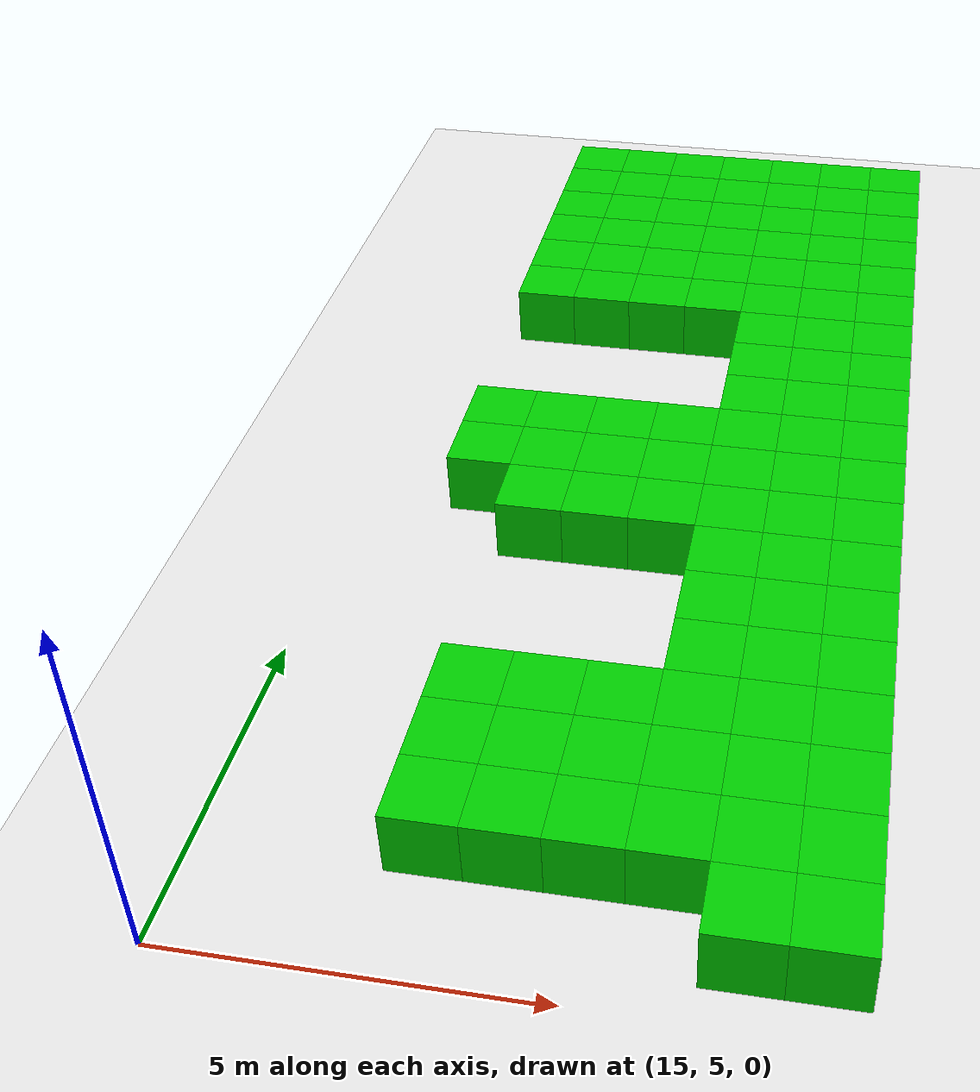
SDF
<sdf version="1.6">
 <world name="generated_maze">
  <model name="ground_plane">
   <static>true</static>
   <link name="link">
    <collision name="collision">
     <geometry><plane><normal>0 0 1</normal><size>100 100</size></plane></geometry>
    </collision>
    <visual name="visual">
     <geometry><plane><normal>0 0 1</normal><size>100 100</size></plane></geometry>
     <material>
      <ambient>0.9 0.9 0.9 1</ambient>
      <diffuse>0.9 0.9 0.9 1</diffuse>
      <specular>0.3 0.3 0.3 1</specular>
     </material>
    </visual>
   </link>
  </model>
  <model name="wall_0_41">
   <static>true</static>
   <pose>17 24 0.5 0 0 0</pose>
   <link name="link">
    <collision name="collision"><geometry><box><size>1 1 1</size></box></geometry></collision>
    <visual name="visual">
     <geometry><box><size>1 1 1</size></box></geometry>
     <material>
      <ambient>0.0 0.8 0.0 1</ambient>
      <diffuse>0.0 0.8 0.0 1</diffuse>
      <specular>0.1 0.1 0.1 1</specular>
     </material>
    </visual>
   </link>
  </model>
  <model name="wall_0_42">
   <static>true</static>
   <pose>18 24 0.5 0 0 0</pose>
   <link name="link">
    <collision name="collision"><geometry><box><size>1 1 1</size></box></geometry></collision>
    <visual name="visual">
     <geometry><box><size>1 1 1</size></box></geometry>
     <material>
      <ambient>0.0 0.8 0.0 1</ambient>
      <diffuse>0.0 0.8 0.0 1</diffuse>
      <specular>0.1 0.1 0.1 1</specular>
     </material>
    </visual>
   </link>
  </model>
  <model name="wall_0_43">
   <static>true</static>
   <pose>19 24 0.5 0 0 0</pose>
   <link name="link">
    <collision name="collision"><geometry><box><size>1 1 1</size></box></geometry></collision>
    <visual name="visual">
     <geometry><box><size>1 1 1</size></box></geometry>
     <material>
      <ambient>0.0 0.8 0.0 1</ambient>
      <diffuse>0.0 0.8 0.0 1</diffuse>
      <specular>0.1 0.1 0.1 1</specular>
     </material>
    </visual>
   </link>
  </model>
  <model name="wall_0_44">
   <static>true</static>
   <pose>20 24 0.5 0 0 0</pose>
   <link name="link">
    <collision name="collision"><geometry><box><size>1 1 1</size></box></geometry></collision>
    <visual name="visual">
     <geometry><box><size>1 1 1</size></box></geometry>
     <material>
      <ambient>0.0 0.8 0.0 1</ambient>
      <diffuse>0.0 0.8 0.0 1</diffuse>
      <specular>0.1 0.1 0.1 1</specular>
     </material>
    </visual>
   </link>
  </model>
  <model name="wall_0_45">
   <static>true</static>
   <pose>21 24 0.5 0 0 0</pose>
   <link name="link">
    <collision name="collision"><geometry><box><size>1 1 1</size></box></geometry></collision>
    <visual name="visual">
     <geometry><box><size>1 1 1</size></box></geometry>
     <material>
      <ambient>0.0 0.8 0.0 1</ambient>
      <diffuse>0.0 0.8 0.0 1</diffuse>
      <specular>0.1 0.1 0.1 1</specular>
     </material>
    </visual>
   </link>
  </model>
  <model name="wall_0_46">
   <static>true</static>
   <pose>22 24 0.5 0 0 0</pose>
   <link name="link">
    <collision name="collision"><geometry><box><size>1 1 1</size></box></geometry></collision>
    <visual name="visual">
     <geometry><box><size>1 1 1</size></box></geometry>
     <material>
      <ambient>0.0 0.8 0.0 1</ambient>
      <diffuse>0.0 0.8 0.0 1</diffuse>
      <specular>0.1 0.1 0.1 1</specular>
     </material>
    </visual>
   </link>
  </model>
  <model name="wall_0_47">
   <static>true</static>
   <pose>23 24 0.5 0 0 0</pose>
   <link name="link">
    <collision name="collision"><geometry><box><size>1 1 1</size></box></geometry></collision>
    <visual name="visual">
     <geometry><box><size>1 1 1</size></box></geometry>
     <material>
      <ambient>0.0 0.8 0.0 1</ambient>
      <diffuse>0.0 0.8 0.0 1</diffuse>
      <specular>0.1 0.1 0.1 1</specular>
     </material>
    </visual>
   </link>
  </model>
  <model name="wall_1_41">
   <static>true</static>
   <pose>17 23 0.5 0 0 0</pose>
   <link name="link">
    <collision name="collision"><geometry><box><size>1 1 1</size></box></geometry></collision>
    <visual name="visual">
     <geometry><box><size>1 1 1</size></box></geometry>
     <material>
      <ambient>0.0 0.8 0.0 1</ambient>
      <diffuse>0.0 0.8 0.0 1</diffuse>
      <specular>0.1 0.1 0.1 1</specular>
     </material>
    </visual>
   </link>
  </model>
  <model name="wall_1_42">
   <static>true</static>
   <pose>18 23 0.5 0 0 0</pose>
   <link name="link">
    <collision name="collision"><geometry><box><size>1 1 1</size></box></geometry></collision>
    <visual name="visual">
     <geometry><box><size>1 1 1</size></box></geometry>
     <material>
      <ambient>0.0 0.8 0.0 1</ambient>
      <diffuse>0.0 0.8 0.0 1</diffuse>
      <specular>0.1 0.1 0.1 1</specular>
     </material>
    </visual>
   </link>
  </model>
  <model name="wall_1_43">
   <static>true</static>
   <pose>19 23 0.5 0 0 0</pose>
   <link name="link">
    <collision name="collision"><geometry><box><size>1 1 1</size></box></geometry></collision>
    <visual name="visual">
     <geometry><box><size>1 1 1</size></box></geometry>
     <material>
      <ambient>0.0 0.8 0.0 1</ambient>
      <diffuse>0.0 0.8 0.0 1</diffuse>
      <specular>0.1 0.1 0.1 1</specular>
     </material>
    </visual>
   </link>
  </model>
  <model name="wall_1_44">
   <static>true</static>
   <pose>20 23 0.5 0 0 0</pose>
   <link name="link">
    <collision name="collision"><geometry><box><size>1 1 1</size></box></geometry></collision>
    <visual name="visual">
     <geometry><box><size>1 1 1</size></box></geometry>
     <material>
      <ambient>0.0 0.8 0.0 1</ambient>
      <diffuse>0.0 0.8 0.0 1</diffuse>
      <specular>0.1 0.1 0.1 1</specular>
     </material>
    </visual>
   </link>
  </model>
  <model name="wall_1_45">
   <static>true</static>
   <pose>21 23 0.5 0 0 0</pose>
   <link name="link">
    <collision name="collision"><geometry><box><size>1 1 1</size></box></geometry></collision>
    <visual name="visual">
     <geometry><box><size>1 1 1</size></box></geometry>
     <material>
      <ambient>0.0 0.8 0.0 1</ambient>
      <diffuse>0.0 0.8 0.0 1</diffuse>
      <specular>0.1 0.1 0.1 1</specular>
     </material>
    </visual>
   </link>
  </model>
  <model name="wall_1_46">
   <static>true</static>
   <pose>22 23 0.5 0 0 0</pose>
   <link name="link">
    <collision name="collision"><geometry><box><size>1 1 1</size></box></geometry></collision>
    <visual name="visual">
     <geometry><box><size>1 1 1</size></box></geometry>
     <material>
      <ambient>0.0 0.8 0.0 1</ambient>
      <diffuse>0.0 0.8 0.0 1</diffuse>
      <specular>0.1 0.1 0.1 1</specular>
     </material>
    </visual>
   </link>
  </model>
  <model name="wall_1_47">
   <static>true</static>
   <pose>23 23 0.5 0 0 0</pose>
   <link name="link">
    <collision name="collision"><geometry><box><size>1 1 1</size></box></geometry></collision>
    <visual name="visual">
     <geometry><box><size>1 1 1</size></box></geometry>
     <material>
      <ambient>0.0 0.8 0.0 1</ambient>
      <diffuse>0.0 0.8 0.0 1</diffuse>
      <specular>0.1 0.1 0.1 1</specular>
     </material>
    </visual>
   </link>
  </model>
  <model name="wall_2_41">
   <static>true</static>
   <pose>17 22 0.5 0 0 0</pose>
   <link name="link">
    <collision name="collision"><geometry><box><size>1 1 1</size></box></geometry></collision>
    <visual name="visual">
     <geometry><box><size>1 1 1</size></box></geometry>
     <material>
      <ambient>0.0 0.8 0.0 1</ambient>
      <diffuse>0.0 0.8 0.0 1</diffuse>
      <specular>0.1 0.1 0.1 1</specular>
     </material>
    </visual>
   </link>
  </model>
  <model name="wall_2_42">
   <static>true</static>
   <pose>18 22 0.5 0 0 0</pose>
   <link name="link">
    <collision name="collision"><geometry><box><size>1 1 1</size></box></geometry></collision>
    <visual name="visual">
     <geometry><box><size>1 1 1</size></box></geometry>
     <material>
      <ambient>0.0 0.8 0.0 1</ambient>
      <diffuse>0.0 0.8 0.0 1</diffuse>
      <specular>0.1 0.1 0.1 1</specular>
     </material>
    </visual>
   </link>
  </model>
  <model name="wall_2_43">
   <static>true</static>
   <pose>19 22 0.5 0 0 0</pose>
   <link name="link">
    <collision name="collision"><geometry><box><size>1 1 1</size></box></geometry></collision>
    <visual name="visual">
     <geometry><box><size>1 1 1</size></box></geometry>
     <material>
      <ambient>0.0 0.8 0.0 1</ambient>
      <diffuse>0.0 0.8 0.0 1</diffuse>
      <specular>0.1 0.1 0.1 1</specular>
     </material>
    </visual>
   </link>
  </model>
  <model name="wall_2_44">
   <static>true</static>
   <pose>20 22 0.5 0 0 0</pose>
   <link name="link">
    <collision name="collision"><geometry><box><size>1 1 1</size></box></geometry></collision>
    <visual name="visual">
     <geometry><box><size>1 1 1</size></box></geometry>
     <material>
      <ambient>0.0 0.8 0.0 1</ambient>
      <diffuse>0.0 0.8 0.0 1</diffuse>
      <specular>0.1 0.1 0.1 1</specular>
     </material>
    </visual>
   </link>
  </model>
  <model name="wall_2_45">
   <static>true</static>
   <pose>21 22 0.5 0 0 0</pose>
   <link name="link">
    <collision name="collision"><geometry><box><size>1 1 1</size></box></geometry></collision>
    <visual name="visual">
     <geometry><box><size>1 1 1</size></box></geometry>
     <material>
      <ambient>0.0 0.8 0.0 1</ambient>
      <diffuse>0.0 0.8 0.0 1</diffuse>
      <specular>0.1 0.1 0.1 1</specular>
     </material>
    </visual>
   </link>
  </model>
  <model name="wall_2_46">
   <static>true</static>
   <pose>22 22 0.5 0 0 0</pose>
   <link name="link">
    <collision name="collision"><geometry><box><size>1 1 1</size></box></geometry></collision>
    <visual name="visual">
     <geometry><box><size>1 1 1</size></box></geometry>
     <material>
      <ambient>0.0 0.8 0.0 1</ambient>
      <diffuse>0.0 0.8 0.0 1</diffuse>
      <specular>0.1 0.1 0.1 1</specular>
     </material>
    </visual>
   </link>
  </model>
  <model name="wall_2_47">
   <static>true</static>
   <pose>23 22 0.5 0 0 0</pose>
   <link name="link">
    <collision name="collision"><geometry><box><size>1 1 1</size></box></geometry></collision>
    <visual name="visual">
     <geometry><box><size>1 1 1</size></box></geometry>
     <material>
      <ambient>0.0 0.8 0.0 1</ambient>
      <diffuse>0.0 0.8 0.0 1</diffuse>
      <specular>0.1 0.1 0.1 1</specular>
     </material>
    </visual>
   </link>
  </model>
  <model name="wall_3_41">
   <static>true</static>
   <pose>17 21 0.5 0 0 0</pose>
   <link name="link">
    <collision name="collision"><geometry><box><size>1 1 1</size></box></geometry></collision>
    <visual name="visual">
     <geometry><box><size>1 1 1</size></box></geometry>
     <material>
      <ambient>0.0 0.8 0.0 1</ambient>
      <diffuse>0.0 0.8 0.0 1</diffuse>
      <specular>0.1 0.1 0.1 1</specular>
     </material>
    </visual>
   </link>
  </model>
  <model name="wall_3_42">
   <static>true</static>
   <pose>18 21 0.5 0 0 0</pose>
   <link name="link">
    <collision name="collision"><geometry><box><size>1 1 1</size></box></geometry></collision>
    <visual name="visual">
     <geometry><box><size>1 1 1</size></box></geometry>
     <material>
      <ambient>0.0 0.8 0.0 1</ambient>
      <diffuse>0.0 0.8 0.0 1</diffuse>
      <specular>0.1 0.1 0.1 1</specular>
     </material>
    </visual>
   </link>
  </model>
  <model name="wall_3_43">
   <static>true</static>
   <pose>19 21 0.5 0 0 0</pose>
   <link name="link">
    <collision name="collision"><geometry><box><size>1 1 1</size></box></geometry></collision>
    <visual name="visual">
     <geometry><box><size>1 1 1</size></box></geometry>
     <material>
      <ambient>0.0 0.8 0.0 1</ambient>
      <diffuse>0.0 0.8 0.0 1</diffuse>
      <specular>0.1 0.1 0.1 1</specular>
     </material>
    </visual>
   </link>
  </model>
  <model name="wall_3_44">
   <static>true</static>
   <pose>20 21 0.5 0 0 0</pose>
   <link name="link">
    <collision name="collision"><geometry><box><size>1 1 1</size></box></geometry></collision>
    <visual name="visual">
     <geometry><box><size>1 1 1</size></box></geometry>
     <material>
      <ambient>0.0 0.8 0.0 1</ambient>
      <diffuse>0.0 0.8 0.0 1</diffuse>
      <specular>0.1 0.1 0.1 1</specular>
     </material>
    </visual>
   </link>
  </model>
  <model name="wall_3_45">
   <static>true</static>
   <pose>21 21 0.5 0 0 0</pose>
   <link name="link">
    <collision name="collision"><geometry><box><size>1 1 1</size></box></geometry></collision>
    <visual name="visual">
     <geometry><box><size>1 1 1</size></box></geometry>
     <material>
      <ambient>0.0 0.8 0.0 1</ambient>
      <diffuse>0.0 0.8 0.0 1</diffuse>
      <specular>0.1 0.1 0.1 1</specular>
     </material>
    </visual>
   </link>
  </model>
  <model name="wall_3_46">
   <static>true</static>
   <pose>22 21 0.5 0 0 0</pose>
   <link name="link">
    <collision name="collision"><geometry><box><size>1 1 1</size></box></geometry></collision>
    <visual name="visual">
     <geometry><box><size>1 1 1</size></box></geometry>
     <material>
      <ambient>0.0 0.8 0.0 1</ambient>
      <diffuse>0.0 0.8 0.0 1</diffuse>
      <specular>0.1 0.1 0.1 1</specular>
     </material>
    </visual>
   </link>
  </model>
  <model name="wall_3_47">
   <static>true</static>
   <pose>23 21 0.5 0 0 0</pose>
   <link name="link">
    <collision name="collision"><geometry><box><size>1 1 1</size></box></geometry></collision>
    <visual name="visual">
     <geometry><box><size>1 1 1</size></box></geometry>
     <material>
      <ambient>0.0 0.8 0.0 1</ambient>
      <diffuse>0.0 0.8 0.0 1</diffuse>
      <specular>0.1 0.1 0.1 1</specular>
     </material>
    </visual>
   </link>
  </model>
  <model name="wall_4_41">
   <static>true</static>
   <pose>17 20 0.5 0 0 0</pose>
   <link name="link">
    <collision name="collision"><geometry><box><size>1 1 1</size></box></geometry></collision>
    <visual name="visual">
     <geometry><box><size>1 1 1</size></box></geometry>
     <material>
      <ambient>0.0 0.8 0.0 1</ambient>
      <diffuse>0.0 0.8 0.0 1</diffuse>
      <specular>0.1 0.1 0.1 1</specular>
     </material>
    </visual>
   </link>
  </model>
  <model name="wall_4_42">
   <static>true</static>
   <pose>18 20 0.5 0 0 0</pose>
   <link name="link">
    <collision name="collision"><geometry><box><size>1 1 1</size></box></geometry></collision>
    <visual name="visual">
     <geometry><box><size>1 1 1</size></box></geometry>
     <material>
      <ambient>0.0 0.8 0.0 1</ambient>
      <diffuse>0.0 0.8 0.0 1</diffuse>
      <specular>0.1 0.1 0.1 1</specular>
     </material>
    </visual>
   </link>
  </model>
  <model name="wall_4_43">
   <static>true</static>
   <pose>19 20 0.5 0 0 0</pose>
   <link name="link">
    <collision name="collision"><geometry><box><size>1 1 1</size></box></geometry></collision>
    <visual name="visual">
     <geometry><box><size>1 1 1</size></box></geometry>
     <material>
      <ambient>0.0 0.8 0.0 1</ambient>
      <diffuse>0.0 0.8 0.0 1</diffuse>
      <specular>0.1 0.1 0.1 1</specular>
     </material>
    </visual>
   </link>
  </model>
  <model name="wall_4_44">
   <static>true</static>
   <pose>20 20 0.5 0 0 0</pose>
   <link name="link">
    <collision name="collision"><geometry><box><size>1 1 1</size></box></geometry></collision>
    <visual name="visual">
     <geometry><box><size>1 1 1</size></box></geometry>
     <material>
      <ambient>0.0 0.8 0.0 1</ambient>
      <diffuse>0.0 0.8 0.0 1</diffuse>
      <specular>0.1 0.1 0.1 1</specular>
     </material>
    </visual>
   </link>
  </model>
  <model name="wall_4_45">
   <static>true</static>
   <pose>21 20 0.5 0 0 0</pose>
   <link name="link">
    <collision name="collision"><geometry><box><size>1 1 1</size></box></geometry></collision>
    <visual name="visual">
     <geometry><box><size>1 1 1</size></box></geometry>
     <material>
      <ambient>0.0 0.8 0.0 1</ambient>
      <diffuse>0.0 0.8 0.0 1</diffuse>
      <specular>0.1 0.1 0.1 1</specular>
     </material>
    </visual>
   </link>
  </model>
  <model name="wall_4_46">
   <static>true</static>
   <pose>22 20 0.5 0 0 0</pose>
   <link name="link">
    <collision name="collision"><geometry><box><size>1 1 1</size></box></geometry></collision>
    <visual name="visual">
     <geometry><box><size>1 1 1</size></box></geometry>
     <material>
      <ambient>0.0 0.8 0.0 1</ambient>
      <diffuse>0.0 0.8 0.0 1</diffuse>
      <specular>0.1 0.1 0.1 1</specular>
     </material>
    </visual>
   </link>
  </model>
  <model name="wall_4_47">
   <static>true</static>
   <pose>23 20 0.5 0 0 0</pose>
   <link name="link">
    <collision name="collision"><geometry><box><size>1 1 1</size></box></geometry></collision>
    <visual name="visual">
     <geometry><box><size>1 1 1</size></box></geometry>
     <material>
      <ambient>0.0 0.8 0.0 1</ambient>
      <diffuse>0.0 0.8 0.0 1</diffuse>
      <specular>0.1 0.1 0.1 1</specular>
     </material>
    </visual>
   </link>
  </model>
  <model name="wall_5_41">
   <static>true</static>
   <pose>17 19 0.5 0 0 0</pose>
   <link name="link">
    <collision name="collision"><geometry><box><size>1 1 1</size></box></geometry></collision>
    <visual name="visual">
     <geometry><box><size>1 1 1</size></box></geometry>
     <material>
      <ambient>0.0 0.8 0.0 1</ambient>
      <diffuse>0.0 0.8 0.0 1</diffuse>
      <specular>0.1 0.1 0.1 1</specular>
     </material>
    </visual>
   </link>
  </model>
  <model name="wall_5_42">
   <static>true</static>
   <pose>18 19 0.5 0 0 0</pose>
   <link name="link">
    <collision name="collision"><geometry><box><size>1 1 1</size></box></geometry></collision>
    <visual name="visual">
     <geometry><box><size>1 1 1</size></box></geometry>
     <material>
      <ambient>0.0 0.8 0.0 1</ambient>
      <diffuse>0.0 0.8 0.0 1</diffuse>
      <specular>0.1 0.1 0.1 1</specular>
     </material>
    </visual>
   </link>
  </model>
  <model name="wall_5_43">
   <static>true</static>
   <pose>19 19 0.5 0 0 0</pose>
   <link name="link">
    <collision name="collision"><geometry><box><size>1 1 1</size></box></geometry></collision>
    <visual name="visual">
     <geometry><box><size>1 1 1</size></box></geometry>
     <material>
      <ambient>0.0 0.8 0.0 1</ambient>
      <diffuse>0.0 0.8 0.0 1</diffuse>
      <specular>0.1 0.1 0.1 1</specular>
     </material>
    </visual>
   </link>
  </model>
  <model name="wall_5_44">
   <static>true</static>
   <pose>20 19 0.5 0 0 0</pose>
   <link name="link">
    <collision name="collision"><geometry><box><size>1 1 1</size></box></geometry></collision>
    <visual name="visual">
     <geometry><box><size>1 1 1</size></box></geometry>
     <material>
      <ambient>0.0 0.8 0.0 1</ambient>
      <diffuse>0.0 0.8 0.0 1</diffuse>
      <specular>0.1 0.1 0.1 1</specular>
     </material>
    </visual>
   </link>
  </model>
  <model name="wall_5_45">
   <static>true</static>
   <pose>21 19 0.5 0 0 0</pose>
   <link name="link">
    <collision name="collision"><geometry><box><size>1 1 1</size></box></geometry></collision>
    <visual name="visual">
     <geometry><box><size>1 1 1</size></box></geometry>
     <material>
      <ambient>0.0 0.8 0.0 1</ambient>
      <diffuse>0.0 0.8 0.0 1</diffuse>
      <specular>0.1 0.1 0.1 1</specular>
     </material>
    </visual>
   </link>
  </model>
  <model name="wall_5_46">
   <static>true</static>
   <pose>22 19 0.5 0 0 0</pose>
   <link name="link">
    <collision name="collision"><geometry><box><size>1 1 1</size></box></geometry></collision>
    <visual name="visual">
     <geometry><box><size>1 1 1</size></box></geometry>
     <material>
      <ambient>0.0 0.8 0.0 1</ambient>
      <diffuse>0.0 0.8 0.0 1</diffuse>
      <specular>0.1 0.1 0.1 1</specular>
     </material>
    </visual>
   </link>
  </model>
  <model name="wall_5_47">
   <static>true</static>
   <pose>23 19 0.5 0 0 0</pose>
   <link name="link">
    <collision name="collision"><geometry><box><size>1 1 1</size></box></geometry></collision>
    <visual name="visual">
     <geometry><box><size>1 1 1</size></box></geometry>
     <material>
      <ambient>0.0 0.8 0.0 1</ambient>
      <diffuse>0.0 0.8 0.0 1</diffuse>
      <specular>0.1 0.1 0.1 1</specular>
     </material>
    </visual>
   </link>
  </model>
  <model name="wall_6_45">
   <static>true</static>
   <pose>21 18 0.5 0 0 0</pose>
   <link name="link">
    <collision name="collision"><geometry><box><size>1 1 1</size></box></geometry></collision>
    <visual name="visual">
     <geometry><box><size>1 1 1</size></box></geometry>
     <material>
      <ambient>0.0 0.8 0.0 1</ambient>
      <diffuse>0.0 0.8 0.0 1</diffuse>
      <specular>0.1 0.1 0.1 1</specular>
     </material>
    </visual>
   </link>
  </model>
  <model name="wall_6_46">
   <static>true</static>
   <pose>22 18 0.5 0 0 0</pose>
   <link name="link">
    <collision name="collision"><geometry><box><size>1 1 1</size></box></geometry></collision>
    <visual name="visual">
     <geometry><box><size>1 1 1</size></box></geometry>
     <material>
      <ambient>0.0 0.8 0.0 1</ambient>
      <diffuse>0.0 0.8 0.0 1</diffuse>
      <specular>0.1 0.1 0.1 1</specular>
     </material>
    </visual>
   </link>
  </model>
  <model name="wall_6_47">
   <static>true</static>
   <pose>23 18 0.5 0 0 0</pose>
   <link name="link">
    <collision name="collision"><geometry><box><size>1 1 1</size></box></geometry></collision>
    <visual name="visual">
     <geometry><box><size>1 1 1</size></box></geometry>
     <material>
      <ambient>0.0 0.8 0.0 1</ambient>
      <diffuse>0.0 0.8 0.0 1</diffuse>
      <specular>0.1 0.1 0.1 1</specular>
     </material>
    </visual>
   </link>
  </model>
  <model name="wall_7_45">
   <static>true</static>
   <pose>21 17 0.5 0 0 0</pose>
   <link name="link">
    <collision name="collision"><geometry><box><size>1 1 1</size></box></geometry></collision>
    <visual name="visual">
     <geometry><box><size>1 1 1</size></box></geometry>
     <material>
      <ambient>0.0 0.8 0.0 1</ambient>
      <diffuse>0.0 0.8 0.0 1</diffuse>
      <specular>0.1 0.1 0.1 1</specular>
     </material>
    </visual>
   </link>
  </model>
  <model name="wall_7_46">
   <static>true</static>
   <pose>22 17 0.5 0 0 0</pose>
   <link name="link">
    <collision name="collision"><geometry><box><size>1 1 1</size></box></geometry></collision>
    <visual name="visual">
     <geometry><box><size>1 1 1</size></box></geometry>
     <material>
      <ambient>0.0 0.8 0.0 1</ambient>
      <diffuse>0.0 0.8 0.0 1</diffuse>
      <specular>0.1 0.1 0.1 1</specular>
     </material>
    </visual>
   </link>
  </model>
  <model name="wall_7_47">
   <static>true</static>
   <pose>23 17 0.5 0 0 0</pose>
   <link name="link">
    <collision name="collision"><geometry><box><size>1 1 1</size></box></geometry></collision>
    <visual name="visual">
     <geometry><box><size>1 1 1</size></box></geometry>
     <material>
      <ambient>0.0 0.8 0.0 1</ambient>
      <diffuse>0.0 0.8 0.0 1</diffuse>
      <specular>0.1 0.1 0.1 1</specular>
     </material>
    </visual>
   </link>
  </model>
  <model name="wall_8_45">
   <static>true</static>
   <pose>21 16 0.5 0 0 0</pose>
   <link name="link">
    <collision name="collision"><geometry><box><size>1 1 1</size></box></geometry></collision>
    <visual name="visual">
     <geometry><box><size>1 1 1</size></box></geometry>
     <material>
      <ambient>0.0 0.8 0.0 1</ambient>
      <diffuse>0.0 0.8 0.0 1</diffuse>
      <specular>0.1 0.1 0.1 1</specular>
     </material>
    </visual>
   </link>
  </model>
  <model name="wall_8_46">
   <static>true</static>
   <pose>22 16 0.5 0 0 0</pose>
   <link name="link">
    <collision name="collision"><geometry><box><size>1 1 1</size></box></geometry></collision>
    <visual name="visual">
     <geometry><box><size>1 1 1</size></box></geometry>
     <material>
      <ambient>0.0 0.8 0.0 1</ambient>
      <diffuse>0.0 0.8 0.0 1</diffuse>
      <specular>0.1 0.1 0.1 1</specular>
     </material>
    </visual>
   </link>
  </model>
  <model name="wall_8_47">
   <static>true</static>
   <pose>23 16 0.5 0 0 0</pose>
   <link name="link">
    <collision name="collision"><geometry><box><size>1 1 1</size></box></geometry></collision>
    <visual name="visual">
     <geometry><box><size>1 1 1</size></box></geometry>
     <material>
      <ambient>0.0 0.8 0.0 1</ambient>
      <diffuse>0.0 0.8 0.0 1</diffuse>
      <specular>0.1 0.1 0.1 1</specular>
     </material>
    </visual>
   </link>
  </model>
  <model name="wall_9_41">
   <static>true</static>
   <pose>17 15 0.5 0 0 0</pose>
   <link name="link">
    <collision name="collision"><geometry><box><size>1 1 1</size></box></geometry></collision>
    <visual name="visual">
     <geometry><box><size>1 1 1</size></box></geometry>
     <material>
      <ambient>0.0 0.8 0.0 1</ambient>
      <diffuse>0.0 0.8 0.0 1</diffuse>
      <specular>0.1 0.1 0.1 1</specular>
     </material>
    </visual>
   </link>
  </model>
  <model name="wall_9_42">
   <static>true</static>
   <pose>18 15 0.5 0 0 0</pose>
   <link name="link">
    <collision name="collision"><geometry><box><size>1 1 1</size></box></geometry></collision>
    <visual name="visual">
     <geometry><box><size>1 1 1</size></box></geometry>
     <material>
      <ambient>0.0 0.8 0.0 1</ambient>
      <diffuse>0.0 0.8 0.0 1</diffuse>
      <specular>0.1 0.1 0.1 1</specular>
     </material>
    </visual>
   </link>
  </model>
  <model name="wall_9_43">
   <static>true</static>
   <pose>19 15 0.5 0 0 0</pose>
   <link name="link">
    <collision name="collision"><geometry><box><size>1 1 1</size></box></geometry></collision>
    <visual name="visual">
     <geometry><box><size>1 1 1</size></box></geometry>
     <material>
      <ambient>0.0 0.8 0.0 1</ambient>
      <diffuse>0.0 0.8 0.0 1</diffuse>
      <specular>0.1 0.1 0.1 1</specular>
     </material>
    </visual>
   </link>
  </model>
  <model name="wall_9_44">
   <static>true</static>
   <pose>20 15 0.5 0 0 0</pose>
   <link name="link">
    <collision name="collision"><geometry><box><size>1 1 1</size></box></geometry></collision>
    <visual name="visual">
     <geometry><box><size>1 1 1</size></box></geometry>
     <material>
      <ambient>0.0 0.8 0.0 1</ambient>
      <diffuse>0.0 0.8 0.0 1</diffuse>
      <specular>0.1 0.1 0.1 1</specular>
     </material>
    </visual>
   </link>
  </model>
  <model name="wall_9_45">
   <static>true</static>
   <pose>21 15 0.5 0 0 0</pose>
   <link name="link">
    <collision name="collision"><geometry><box><size>1 1 1</size></box></geometry></collision>
    <visual name="visual">
     <geometry><box><size>1 1 1</size></box></geometry>
     <material>
      <ambient>0.0 0.8 0.0 1</ambient>
      <diffuse>0.0 0.8 0.0 1</diffuse>
      <specular>0.1 0.1 0.1 1</specular>
     </material>
    </visual>
   </link>
  </model>
  <model name="wall_9_46">
   <static>true</static>
   <pose>22 15 0.5 0 0 0</pose>
   <link name="link">
    <collision name="collision"><geometry><box><size>1 1 1</size></box></geometry></collision>
    <visual name="visual">
     <geometry><box><size>1 1 1</size></box></geometry>
     <material>
      <ambient>0.0 0.8 0.0 1</ambient>
      <diffuse>0.0 0.8 0.0 1</diffuse>
      <specular>0.1 0.1 0.1 1</specular>
     </material>
    </visual>
   </link>
  </model>
  <model name="wall_9_47">
   <static>true</static>
   <pose>23 15 0.5 0 0 0</pose>
   <link name="link">
    <collision name="collision"><geometry><box><size>1 1 1</size></box></geometry></collision>
    <visual name="visual">
     <geometry><box><size>1 1 1</size></box></geometry>
     <material>
      <ambient>0.0 0.8 0.0 1</ambient>
      <diffuse>0.0 0.8 0.0 1</diffuse>
      <specular>0.1 0.1 0.1 1</specular>
     </material>
    </visual>
   </link>
  </model>
  <model name="wall_10_41">
   <static>true</static>
   <pose>17 14 0.5 0 0 0</pose>
   <link name="link">
    <collision name="collision"><geometry><box><size>1 1 1</size></box></geometry></collision>
    <visual name="visual">
     <geometry><box><size>1 1 1</size></box></geometry>
     <material>
      <ambient>0.0 0.8 0.0 1</ambient>
      <diffuse>0.0 0.8 0.0 1</diffuse>
      <specular>0.1 0.1 0.1 1</specular>
     </material>
    </visual>
   </link>
  </model>
  <model name="wall_10_42">
   <static>true</static>
   <pose>18 14 0.5 0 0 0</pose>
   <link name="link">
    <collision name="collision"><geometry><box><size>1 1 1</size></box></geometry></collision>
    <visual name="visual">
     <geometry><box><size>1 1 1</size></box></geometry>
     <material>
      <ambient>0.0 0.8 0.0 1</ambient>
      <diffuse>0.0 0.8 0.0 1</diffuse>
      <specular>0.1 0.1 0.1 1</specular>
     </material>
    </visual>
   </link>
  </model>
  <model name="wall_10_43">
   <static>true</static>
   <pose>19 14 0.5 0 0 0</pose>
   <link name="link">
    <collision name="collision"><geometry><box><size>1 1 1</size></box></geometry></collision>
    <visual name="visual">
     <geometry><box><size>1 1 1</size></box></geometry>
     <material>
      <ambient>0.0 0.8 0.0 1</ambient>
      <diffuse>0.0 0.8 0.0 1</diffuse>
      <specular>0.1 0.1 0.1 1</specular>
     </material>
    </visual>
   </link>
  </model>
  <model name="wall_10_44">
   <static>true</static>
   <pose>20 14 0.5 0 0 0</pose>
   <link name="link">
    <collision name="collision"><geometry><box><size>1 1 1</size></box></geometry></collision>
    <visual name="visual">
     <geometry><box><size>1 1 1</size></box></geometry>
     <material>
      <ambient>0.0 0.8 0.0 1</ambient>
      <diffuse>0.0 0.8 0.0 1</diffuse>
      <specular>0.1 0.1 0.1 1</specular>
     </material>
    </visual>
   </link>
  </model>
  <model name="wall_10_45">
   <static>true</static>
   <pose>21 14 0.5 0 0 0</pose>
   <link name="link">
    <collision name="collision"><geometry><box><size>1 1 1</size></box></geometry></collision>
    <visual name="visual">
     <geometry><box><size>1 1 1</size></box></geometry>
     <material>
      <ambient>0.0 0.8 0.0 1</ambient>
      <diffuse>0.0 0.8 0.0 1</diffuse>
      <specular>0.1 0.1 0.1 1</specular>
     </material>
    </visual>
   </link>
  </model>
  <model name="wall_10_46">
   <static>true</static>
   <pose>22 14 0.5 0 0 0</pose>
   <link name="link">
    <collision name="collision"><geometry><box><size>1 1 1</size></box></geometry></collision>
    <visual name="visual">
     <geometry><box><size>1 1 1</size></box></geometry>
     <material>
      <ambient>0.0 0.8 0.0 1</ambient>
      <diffuse>0.0 0.8 0.0 1</diffuse>
      <specular>0.1 0.1 0.1 1</specular>
     </material>
    </visual>
   </link>
  </model>
  <model name="wall_10_47">
   <static>true</static>
   <pose>23 14 0.5 0 0 0</pose>
   <link name="link">
    <collision name="collision"><geometry><box><size>1 1 1</size></box></geometry></collision>
    <visual name="visual">
     <geometry><box><size>1 1 1</size></box></geometry>
     <material>
      <ambient>0.0 0.8 0.0 1</ambient>
      <diffuse>0.0 0.8 0.0 1</diffuse>
      <specular>0.1 0.1 0.1 1</specular>
     </material>
    </visual>
   </link>
  </model>
  <model name="wall_11_42">
   <static>true</static>
   <pose>18 13 0.5 0 0 0</pose>
   <link name="link">
    <collision name="collision"><geometry><box><size>1 1 1</size></box></geometry></collision>
    <visual name="visual">
     <geometry><box><size>1 1 1</size></box></geometry>
     <material>
      <ambient>0.0 0.8 0.0 1</ambient>
      <diffuse>0.0 0.8 0.0 1</diffuse>
      <specular>0.1 0.1 0.1 1</specular>
     </material>
    </visual>
   </link>
  </model>
  <model name="wall_11_43">
   <static>true</static>
   <pose>19 13 0.5 0 0 0</pose>
   <link name="link">
    <collision name="collision"><geometry><box><size>1 1 1</size></box></geometry></collision>
    <visual name="visual">
     <geometry><box><size>1 1 1</size></box></geometry>
     <material>
      <ambient>0.0 0.8 0.0 1</ambient>
      <diffuse>0.0 0.8 0.0 1</diffuse>
      <specular>0.1 0.1 0.1 1</specular>
     </material>
    </visual>
   </link>
  </model>
  <model name="wall_11_44">
   <static>true</static>
   <pose>20 13 0.5 0 0 0</pose>
   <link name="link">
    <collision name="collision"><geometry><box><size>1 1 1</size></box></geometry></collision>
    <visual name="visual">
     <geometry><box><size>1 1 1</size></box></geometry>
     <material>
      <ambient>0.0 0.8 0.0 1</ambient>
      <diffuse>0.0 0.8 0.0 1</diffuse>
      <specular>0.1 0.1 0.1 1</specular>
     </material>
    </visual>
   </link>
  </model>
  <model name="wall_11_45">
   <static>true</static>
   <pose>21 13 0.5 0 0 0</pose>
   <link name="link">
    <collision name="collision"><geometry><box><size>1 1 1</size></box></geometry></collision>
    <visual name="visual">
     <geometry><box><size>1 1 1</size></box></geometry>
     <material>
      <ambient>0.0 0.8 0.0 1</ambient>
      <diffuse>0.0 0.8 0.0 1</diffuse>
      <specular>0.1 0.1 0.1 1</specular>
     </material>
    </visual>
   </link>
  </model>
  <model name="wall_11_46">
   <static>true</static>
   <pose>22 13 0.5 0 0 0</pose>
   <link name="link">
    <collision name="collision"><geometry><box><size>1 1 1</size></box></geometry></collision>
    <visual name="visual">
     <geometry><box><size>1 1 1</size></box></geometry>
     <material>
      <ambient>0.0 0.8 0.0 1</ambient>
      <diffuse>0.0 0.8 0.0 1</diffuse>
      <specular>0.1 0.1 0.1 1</specular>
     </material>
    </visual>
   </link>
  </model>
  <model name="wall_11_47">
   <static>true</static>
   <pose>23 13 0.5 0 0 0</pose>
   <link name="link">
    <collision name="collision"><geometry><box><size>1 1 1</size></box></geometry></collision>
    <visual name="visual">
     <geometry><box><size>1 1 1</size></box></geometry>
     <material>
      <ambient>0.0 0.8 0.0 1</ambient>
      <diffuse>0.0 0.8 0.0 1</diffuse>
      <specular>0.1 0.1 0.1 1</specular>
     </material>
    </visual>
   </link>
  </model>
  <model name="wall_12_45">
   <static>true</static>
   <pose>21 12 0.5 0 0 0</pose>
   <link name="link">
    <collision name="collision"><geometry><box><size>1 1 1</size></box></geometry></collision>
    <visual name="visual">
     <geometry><box><size>1 1 1</size></box></geometry>
     <material>
      <ambient>0.0 0.8 0.0 1</ambient>
      <diffuse>0.0 0.8 0.0 1</diffuse>
      <specular>0.1 0.1 0.1 1</specular>
     </material>
    </visual>
   </link>
  </model>
  <model name="wall_12_46">
   <static>true</static>
   <pose>22 12 0.5 0 0 0</pose>
   <link name="link">
    <collision name="collision"><geometry><box><size>1 1 1</size></box></geometry></collision>
    <visual name="visual">
     <geometry><box><size>1 1 1</size></box></geometry>
     <material>
      <ambient>0.0 0.8 0.0 1</ambient>
      <diffuse>0.0 0.8 0.0 1</diffuse>
      <specular>0.1 0.1 0.1 1</specular>
     </material>
    </visual>
   </link>
  </model>
  <model name="wall_12_47">
   <static>true</static>
   <pose>23 12 0.5 0 0 0</pose>
   <link name="link">
    <collision name="collision"><geometry><box><size>1 1 1</size></box></geometry></collision>
    <visual name="visual">
     <geometry><box><size>1 1 1</size></box></geometry>
     <material>
      <ambient>0.0 0.8 0.0 1</ambient>
      <diffuse>0.0 0.8 0.0 1</diffuse>
      <specular>0.1 0.1 0.1 1</specular>
     </material>
    </visual>
   </link>
  </model>
  <model name="wall_13_45">
   <static>true</static>
   <pose>21 11 0.5 0 0 0</pose>
   <link name="link">
    <collision name="collision"><geometry><box><size>1 1 1</size></box></geometry></collision>
    <visual name="visual">
     <geometry><box><size>1 1 1</size></box></geometry>
     <material>
      <ambient>0.0 0.8 0.0 1</ambient>
      <diffuse>0.0 0.8 0.0 1</diffuse>
      <specular>0.1 0.1 0.1 1</specular>
     </material>
    </visual>
   </link>
  </model>
  <model name="wall_13_46">
   <static>true</static>
   <pose>22 11 0.5 0 0 0</pose>
   <link name="link">
    <collision name="collision"><geometry><box><size>1 1 1</size></box></geometry></collision>
    <visual name="visual">
     <geometry><box><size>1 1 1</size></box></geometry>
     <material>
      <ambient>0.0 0.8 0.0 1</ambient>
      <diffuse>0.0 0.8 0.0 1</diffuse>
      <specular>0.1 0.1 0.1 1</specular>
     </material>
    </visual>
   </link>
  </model>
  <model name="wall_13_47">
   <static>true</static>
   <pose>23 11 0.5 0 0 0</pose>
   <link name="link">
    <collision name="collision"><geometry><box><size>1 1 1</size></box></geometry></collision>
    <visual name="visual">
     <geometry><box><size>1 1 1</size></box></geometry>
     <material>
      <ambient>0.0 0.8 0.0 1</ambient>
      <diffuse>0.0 0.8 0.0 1</diffuse>
      <specular>0.1 0.1 0.1 1</specular>
     </material>
    </visual>
   </link>
  </model>
  <model name="wall_14_45">
   <static>true</static>
   <pose>21 10 0.5 0 0 0</pose>
   <link name="link">
    <collision name="collision"><geometry><box><size>1 1 1</size></box></geometry></collision>
    <visual name="visual">
     <geometry><box><size>1 1 1</size></box></geometry>
     <material>
      <ambient>0.0 0.8 0.0 1</ambient>
      <diffuse>0.0 0.8 0.0 1</diffuse>
      <specular>0.1 0.1 0.1 1</specular>
     </material>
    </visual>
   </link>
  </model>
  <model name="wall_14_46">
   <static>true</static>
   <pose>22 10 0.5 0 0 0</pose>
   <link name="link">
    <collision name="collision"><geometry><box><size>1 1 1</size></box></geometry></collision>
    <visual name="visual">
     <geometry><box><size>1 1 1</size></box></geometry>
     <material>
      <ambient>0.0 0.8 0.0 1</ambient>
      <diffuse>0.0 0.8 0.0 1</diffuse>
      <specular>0.1 0.1 0.1 1</specular>
     </material>
    </visual>
   </link>
  </model>
  <model name="wall_14_47">
   <static>true</static>
   <pose>23 10 0.5 0 0 0</pose>
   <link name="link">
    <collision name="collision"><geometry><box><size>1 1 1</size></box></geometry></collision>
    <visual name="visual">
     <geometry><box><size>1 1 1</size></box></geometry>
     <material>
      <ambient>0.0 0.8 0.0 1</ambient>
      <diffuse>0.0 0.8 0.0 1</diffuse>
      <specular>0.1 0.1 0.1 1</specular>
     </material>
    </visual>
   </link>
  </model>
  <model name="wall_15_42">
   <static>true</static>
   <pose>18 9 0.5 0 0 0</pose>
   <link name="link">
    <collision name="collision"><geometry><box><size>1 1 1</size></box></geometry></collision>
    <visual name="visual">
     <geometry><box><size>1 1 1</size></box></geometry>
     <material>
      <ambient>0.0 0.8 0.0 1</ambient>
      <diffuse>0.0 0.8 0.0 1</diffuse>
      <specular>0.1 0.1 0.1 1</specular>
     </material>
    </visual>
   </link>
  </model>
  <model name="wall_15_43">
   <static>true</static>
   <pose>19 9 0.5 0 0 0</pose>
   <link name="link">
    <collision name="collision"><geometry><box><size>1 1 1</size></box></geometry></collision>
    <visual name="visual">
     <geometry><box><size>1 1 1</size></box></geometry>
     <material>
      <ambient>0.0 0.8 0.0 1</ambient>
      <diffuse>0.0 0.8 0.0 1</diffuse>
      <specular>0.1 0.1 0.1 1</specular>
     </material>
    </visual>
   </link>
  </model>
  <model name="wall_15_44">
   <static>true</static>
   <pose>20 9 0.5 0 0 0</pose>
   <link name="link">
    <collision name="collision"><geometry><box><size>1 1 1</size></box></geometry></collision>
    <visual name="visual">
     <geometry><box><size>1 1 1</size></box></geometry>
     <material>
      <ambient>0.0 0.8 0.0 1</ambient>
      <diffuse>0.0 0.8 0.0 1</diffuse>
      <specular>0.1 0.1 0.1 1</specular>
     </material>
    </visual>
   </link>
  </model>
  <model name="wall_15_45">
   <static>true</static>
   <pose>21 9 0.5 0 0 0</pose>
   <link name="link">
    <collision name="collision"><geometry><box><size>1 1 1</size></box></geometry></collision>
    <visual name="visual">
     <geometry><box><size>1 1 1</size></box></geometry>
     <material>
      <ambient>0.0 0.8 0.0 1</ambient>
      <diffuse>0.0 0.8 0.0 1</diffuse>
      <specular>0.1 0.1 0.1 1</specular>
     </material>
    </visual>
   </link>
  </model>
  <model name="wall_15_46">
   <static>true</static>
   <pose>22 9 0.5 0 0 0</pose>
   <link name="link">
    <collision name="collision"><geometry><box><size>1 1 1</size></box></geometry></collision>
    <visual name="visual">
     <geometry><box><size>1 1 1</size></box></geometry>
     <material>
      <ambient>0.0 0.8 0.0 1</ambient>
      <diffuse>0.0 0.8 0.0 1</diffuse>
      <specular>0.1 0.1 0.1 1</specular>
     </material>
    </visual>
   </link>
  </model>
  <model name="wall_15_47">
   <static>true</static>
   <pose>23 9 0.5 0 0 0</pose>
   <link name="link">
    <collision name="collision"><geometry><box><size>1 1 1</size></box></geometry></collision>
    <visual name="visual">
     <geometry><box><size>1 1 1</size></box></geometry>
     <material>
      <ambient>0.0 0.8 0.0 1</ambient>
      <diffuse>0.0 0.8 0.0 1</diffuse>
      <specular>0.1 0.1 0.1 1</specular>
     </material>
    </visual>
   </link>
  </model>
  <model name="wall_16_42">
   <static>true</static>
   <pose>18 8 0.5 0 0 0</pose>
   <link name="link">
    <collision name="collision"><geometry><box><size>1 1 1</size></box></geometry></collision>
    <visual name="visual">
     <geometry><box><size>1 1 1</size></box></geometry>
     <material>
      <ambient>0.0 0.8 0.0 1</ambient>
      <diffuse>0.0 0.8 0.0 1</diffuse>
      <specular>0.1 0.1 0.1 1</specular>
     </material>
    </visual>
   </link>
  </model>
  <model name="wall_16_43">
   <static>true</static>
   <pose>19 8 0.5 0 0 0</pose>
   <link name="link">
    <collision name="collision"><geometry><box><size>1 1 1</size></box></geometry></collision>
    <visual name="visual">
     <geometry><box><size>1 1 1</size></box></geometry>
     <material>
      <ambient>0.0 0.8 0.0 1</ambient>
      <diffuse>0.0 0.8 0.0 1</diffuse>
      <specular>0.1 0.1 0.1 1</specular>
     </material>
    </visual>
   </link>
  </model>
  <model name="wall_16_44">
   <static>true</static>
   <pose>20 8 0.5 0 0 0</pose>
   <link name="link">
    <collision name="collision"><geometry><box><size>1 1 1</size></box></geometry></collision>
    <visual name="visual">
     <geometry><box><size>1 1 1</size></box></geometry>
     <material>
      <ambient>0.0 0.8 0.0 1</ambient>
      <diffuse>0.0 0.8 0.0 1</diffuse>
      <specular>0.1 0.1 0.1 1</specular>
     </material>
    </visual>
   </link>
  </model>
  <model name="wall_16_45">
   <static>true</static>
   <pose>21 8 0.5 0 0 0</pose>
   <link name="link">
    <collision name="collision"><geometry><box><size>1 1 1</size></box></geometry></collision>
    <visual name="visual">
     <geometry><box><size>1 1 1</size></box></geometry>
     <material>
      <ambient>0.0 0.8 0.0 1</ambient>
      <diffuse>0.0 0.8 0.0 1</diffuse>
      <specular>0.1 0.1 0.1 1</specular>
     </material>
    </visual>
   </link>
  </model>
  <model name="wall_16_46">
   <static>true</static>
   <pose>22 8 0.5 0 0 0</pose>
   <link name="link">
    <collision name="collision"><geometry><box><size>1 1 1</size></box></geometry></collision>
    <visual name="visual">
     <geometry><box><size>1 1 1</size></box></geometry>
     <material>
      <ambient>0.0 0.8 0.0 1</ambient>
      <diffuse>0.0 0.8 0.0 1</diffuse>
      <specular>0.1 0.1 0.1 1</specular>
     </material>
    </visual>
   </link>
  </model>
  <model name="wall_16_47">
   <static>true</static>
   <pose>23 8 0.5 0 0 0</pose>
   <link name="link">
    <collision name="collision"><geometry><box><size>1 1 1</size></box></geometry></collision>
    <visual name="visual">
     <geometry><box><size>1 1 1</size></box></geometry>
     <material>
      <ambient>0.0 0.8 0.0 1</ambient>
      <diffuse>0.0 0.8 0.0 1</diffuse>
      <specular>0.1 0.1 0.1 1</specular>
     </material>
    </visual>
   </link>
  </model>
  <model name="wall_17_42">
   <static>true</static>
   <pose>18 7 0.5 0 0 0</pose>
   <link name="link">
    <collision name="collision"><geometry><box><size>1 1 1</size></box></geometry></collision>
    <visual name="visual">
     <geometry><box><size>1 1 1</size></box></geometry>
     <material>
      <ambient>0.0 0.8 0.0 1</ambient>
      <diffuse>0.0 0.8 0.0 1</diffuse>
      <specular>0.1 0.1 0.1 1</specular>
     </material>
    </visual>
   </link>
  </model>
  <model name="wall_17_43">
   <static>true</static>
   <pose>19 7 0.5 0 0 0</pose>
   <link name="link">
    <collision name="collision"><geometry><box><size>1 1 1</size></box></geometry></collision>
    <visual name="visual">
     <geometry><box><size>1 1 1</size></box></geometry>
     <material>
      <ambient>0.0 0.8 0.0 1</ambient>
      <diffuse>0.0 0.8 0.0 1</diffuse>
      <specular>0.1 0.1 0.1 1</specular>
     </material>
    </visual>
   </link>
  </model>
  <model name="wall_17_44">
   <static>true</static>
   <pose>20 7 0.5 0 0 0</pose>
   <link name="link">
    <collision name="collision"><geometry><box><size>1 1 1</size></box></geometry></collision>
    <visual name="visual">
     <geometry><box><size>1 1 1</size></box></geometry>
     <material>
      <ambient>0.0 0.8 0.0 1</ambient>
      <diffuse>0.0 0.8 0.0 1</diffuse>
      <specular>0.1 0.1 0.1 1</specular>
     </material>
    </visual>
   </link>
  </model>
  <model name="wall_17_45">
   <static>true</static>
   <pose>21 7 0.5 0 0 0</pose>
   <link name="link">
    <collision name="collision"><geometry><box><size>1 1 1</size></box></geometry></collision>
    <visual name="visual">
     <geometry><box><size>1 1 1</size></box></geometry>
     <material>
      <ambient>0.0 0.8 0.0 1</ambient>
      <diffuse>0.0 0.8 0.0 1</diffuse>
      <specular>0.1 0.1 0.1 1</specular>
     </material>
    </visual>
   </link>
  </model>
  <model name="wall_17_46">
   <static>true</static>
   <pose>22 7 0.5 0 0 0</pose>
   <link name="link">
    <collision name="collision"><geometry><box><size>1 1 1</size></box></geometry></collision>
    <visual name="visual">
     <geometry><box><size>1 1 1</size></box></geometry>
     <material>
      <ambient>0.0 0.8 0.0 1</ambient>
      <diffuse>0.0 0.8 0.0 1</diffuse>
      <specular>0.1 0.1 0.1 1</specular>
     </material>
    </visual>
   </link>
  </model>
  <model name="wall_17_47">
   <static>true</static>
   <pose>23 7 0.5 0 0 0</pose>
   <link name="link">
    <collision name="collision"><geometry><box><size>1 1 1</size></box></geometry></collision>
    <visual name="visual">
     <geometry><box><size>1 1 1</size></box></geometry>
     <material>
      <ambient>0.0 0.8 0.0 1</ambient>
      <diffuse>0.0 0.8 0.0 1</diffuse>
      <specular>0.1 0.1 0.1 1</specular>
     </material>
    </visual>
   </link>
  </model>
  <model name="wall_18_46">
   <static>true</static>
   <pose>22 6 0.5 0 0 0</pose>
   <link name="link">
    <collision name="collision"><geometry><box><size>1 1 1</size></box></geometry></collision>
    <visual name="visual">
     <geometry><box><size>1 1 1</size></box></geometry>
     <material>
      <ambient>0.0 0.8 0.0 1</ambient>
      <diffuse>0.0 0.8 0.0 1</diffuse>
      <specular>0.1 0.1 0.1 1</specular>
     </material>
    </visual>
   </link>
  </model>
  <model name="wall_18_47">
   <static>true</static>
   <pose>23 6 0.5 0 0 0</pose>
   <link name="link">
    <collision name="collision"><geometry><box><size>1 1 1</size></box></geometry></collision>
    <visual name="visual">
     <geometry><box><size>1 1 1</size></box></geometry>
     <material>
      <ambient>0.0 0.8 0.0 1</ambient>
      <diffuse>0.0 0.8 0.0 1</diffuse>
      <specular>0.1 0.1 0.1 1</specular>
     </material>
    </visual>
   </link>
  </model>
 </world>
</sdf>
